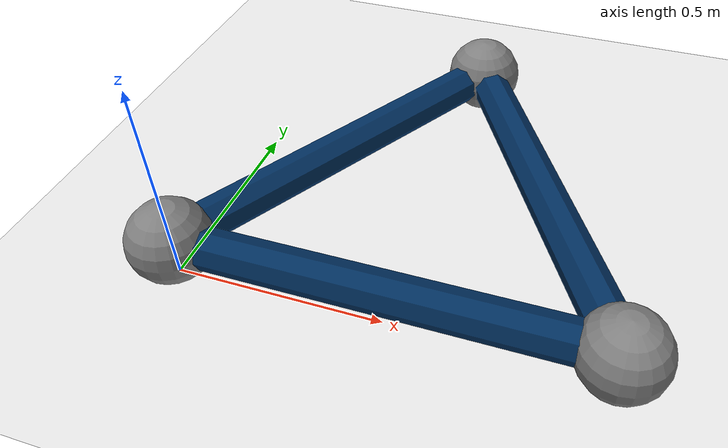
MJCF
<mujoco model="triangle">
    <!-- Set Simulator options -->
    <compiler inertiafromgeom="true"/>
    <option timestep="0.01" gravity="0 0 -9.81"/>

    <!-- Define default geometry properties -->
    <default>
    <geom type="sphere" size="0.1"/>
    </default>

    <worldbody>
    <!-- Lighting and ground plane -->
    <light name="key" pos="0 0 2" dir="0 0 -1"/>
    <geom type="plane" name="plane1" size="2 2 0.1" rgba="0.9 0.9 0.9 1" priority="1"/>

    <!-- First node at the origin (offset by 0.1 in Z) -->
    <body name="node_1" pos="0 0 0.1">
      <!-- 3D sliding joints to allow movement in X, Y, Z -->
      <joint name="node_1_x" type="slide" pos="0 0 0" axis="1 0 0"/>
      <joint name="node_1_y" type="slide" pos="0 0 0" axis="0 1 0"/>
      <joint name="node_1_z" type="slide" pos="0 0 0" axis="0 0 1"/>
      <geom/>
      <site name="node_1_site"/>
    </body>

    <!-- Second node along the X-axis -->
    <body name="node_2" pos="1 0 0.1">
      <joint name="node_2_x" type="slide" pos="0 0 0" axis="1 0 0"/>
      <joint name="node_2_y" type="slide" pos="0 0 0" axis="0 1 0"/>
      <joint name="node_2_z" type="slide" pos="0 0 0" axis="0 0 1"/>
      <geom/>
      <site name="node_2_site"/>
    </body>

    <!-- Third node completing the triangle structure -->
    <body name="node_3" pos="0.5 0.866 0.1">
      <joint name="node_3_x" type="slide" pos="0 0 0" axis="1 0 0"/>
      <joint name="node_3_y" type="slide" pos="0 0 0" axis="0 1 0"/>
      <joint name="node_3_z" type="slide" pos="0 0 0" axis="0 0 1"/>
      <geom/>
      <site name="node_3_site"/>
    </body>

 </worldbody>

    <tendon>
    <!-- Spatial tendons acting as edges of the triangle -->
    <spatial name="tendon_1" width="0.05" rgba="0.0 0.1804 0.3647 1" range="0.5 2">
      <site site="node_1_site"/>
      <site site="node_2_site"/>
    </spatial>
    <spatial name="tendon_2" width="0.05" rgba="0.0 0.1804 0.3647 1" range="0.5 2">
      <site site="node_2_site"/>
      <site site="node_3_site"/>
    </spatial>
    <!-- Unconstrained spatial tendon for the third edge -->
    <spatial name="tendon_3" width="0.05" rgba="0.0 0.1804 0.3647 1">
      <site site="node_3_site"/>
      <site site="node_1_site"/>
    </spatial>

    <!-- A combined spatial tendon tracking the distance of edge 12, and 23 -->
    <spatial name="active_tendons" width="0.05" rgba="0.0 0.1804 0.3647 1">
      <site site="node_1_site"/>
      <site site="node_2_site"/>
      <site site="node_3_site"/>
    </spatial>
    </tendon>

    <actuator>
    <!-- Actuators to control the length of the first two tendons -->
    <position name="Tendon_1" tendon="tendon_1" kp="750" inheritrange="1.0" dampratio="1.0"/>
    <position name="Tendon_2" tendon="tendon_2" kp="750" inheritrange="1.0" dampratio="1.0"/>
    </actuator>

    <equality>
    <!-- Constraint maintaining relationship between tendon_3 and active_tendons -->
    <tendon name="active_tendons" tendon1="tendon_3" tendon2="active_tendons" polycoef="0 -1 0 0 0" solref="0.02 1" solimp="0.9 0.95 0.001"/>
    </equality>
    </mujoco>
